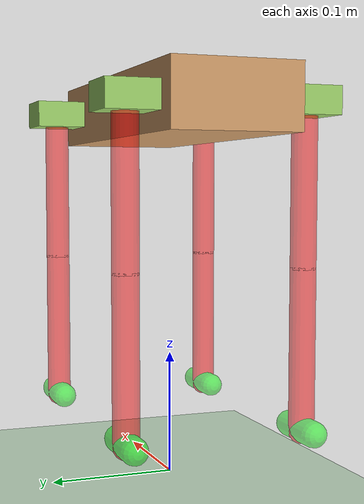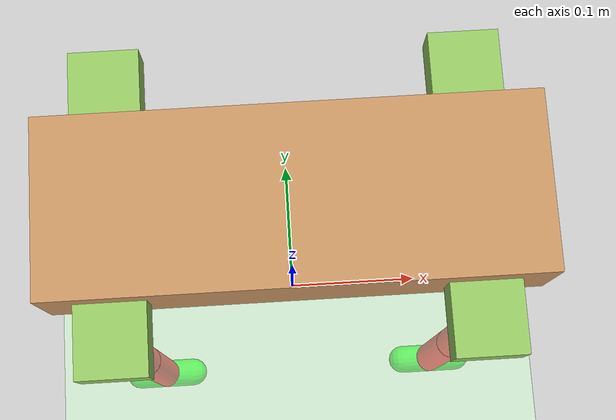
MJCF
<mujoco model="cheetah">
<compiler angle="radian" coordinate="local" inertiafromgeom="false"/>

<default>
    <joint armature="0.01936" solimplimit="0.9 0.95 0.01" solreflimit="0.01 1" stiffness="0"/>
    <geom conaffinity="0" condim="3" contype="1" friction="1.5 .1 .1" rgba="0.8 0.6 .4 1" solimp="0.9 0.95 0.01" solref="0.01 1"/>
    <position forcelimited="true"/>
</default>

<option>
    <flag sensornoise="disable"/>
</option>

<sensor>
    <accelerometer name="accel" noise="0.01" site="imu_site"/>
    <gyro name="gyro" noise="0.02" site="imu_site"/>
</sensor>

<size nstack="300000" nuser_geom="1"/>

<!-- Took out gravity="0 0 -9.81" term-->
<option timestep="0.01"/>
<asset>
    <texture builtin="gradient" height="100" rgb1="1 1 1" rgb2="0 0 0" type="skybox" width="100"/>
    <texture builtin="flat" height="1278" mark="cross" markrgb="1 1 1" name="texgeom" random="0.01" rgb1="0.8 0.6 0.4" rgb2="0.8 0.6 0.4" type="cube" width="127"/>
    <texture builtin="checker" height="100" name="texplane" rgb1="0 0 0" rgb2="0.8 0.8 0.8" type="2d" width="100"/>
    <material name="MatPlane" reflectance="0.5" shininess="1" specular="1" texrepeat="60 60" texture="texplane"/>
    <material name="geom" texture="texgeom" texuniform="true"/>
</asset>

<worldbody>
    <light cutoff="100" diffuse="1 1 1" dir="-0 0 -1.3" directional="true" exponent="1" pos="0 0 1.3" specular=".1 .1 .1"/>
    <geom conaffinity="1" condim="3" material="MatPlane" name="floor" pos="0 0 0" rgba="0.8 0.9 0.8 1" size="40 40 40" type="plane"/>
    <body name="torso" pos="0 0 0.3">
        <camera name="track" mode="trackcom" pos="0 -2 0.3" xyaxes="1 0 0 0 0 1"/>
        <joint armature="0" axis="1 0 0" damping="0" limited="false" name="rootx" pos="0 0 0" stiffness="0" type="free"/>
        <inertial pos="0 0 0" mass="0.56" diaginertia="0.0005532 0.0037619999999999997 0.004011000000000001"/>
        <geom pos="0 0 0" name="torso" size="0.138 0.05 0.025" type="box"/>
        <site name="imu_site" pos="0 0 0" size=".01 .01 .01" type="box"/>

        <body name="fr_module" pos="0.1 -0.04 0">
            <geom pos="0 -0.0132 0" name="fr_block" type="box" size="0.0197 0.0372 0.0107" rgba="0.6 0.8 .4 1"/>
            <joint axis="1 0 0" name="fr_x" pos="0 0 0" limited="true" range="-1.57 1.57" type="hinge" damping="1.049"/>
            <inertial pos="0 0 0" mass="0.08" diaginertia="3.698e-05 7.127e-06 4.075e-05"/>
            <body name="fr" pos="0 -0.03 0">
                <joint axis="0 1 0" name="fr_y" pos="0 0 0" limited="true" range="-1.57 1.57" type="hinge" damping="1.049"/>
                <inertial pos="0 0 0" mass="0.03" diaginertia="1.3020833333333332e-05 1.3020833333333332e-05 1e-06"/>
                <geom axisangle="0 1 0 0" name="fr" fromto="0 0 0 0 0 -0.125" size="0.01" type="capsule" rgba = "1 0 0 0.5" density="50"/>
                <body name="fr2" pos="0 0 -0.1235">
                    <joint axis="0 1 0" name="fr_y2" pos="0 0 0" limited="true" range="-3.14 0.0" type="hinge" damping="1.049"/>
                    <inertial pos="0 0 0" mass="0.03" diaginertia="1.3020833333333332e-05 1.3020833333333332e-05 1e-06"/>
                    <geom axisangle="0 1 0 0" name="fr_l2" fromto="0 0 0 0 0 -0.125" size="0.01" type="capsule" rgba="1 0 0 0.5" density="50"/>
                    <!-- New joint and body for the additional leg segment -->
                    <body name="fr3" pos="0 0 -0.1235">
                        <joint axis="0 1 0" name="fr_z" pos="0 0 0" limited="true" range="-1.57 1.57" type="hinge" damping="1.049"/>
                        <inertial pos="0 0 0" mass="0.02" diaginertia="1e-06 1e-06 1e-06"/>
                        <geom axisangle="1 0 0 1.5708" name="fr_capsule_geom" fromto="-0.02 0 0 0.02 0 0" size="0.01" type="capsule" rgba="0 1 0 0.5" density="50"/>
                    </body>
                </body>
            </body>
        </body>

        <body name="fl_module" pos="0.1 0.04 0">
            <geom pos = "0 0.0132 0" name="fl_block" type="box" size="0.0197 0.0372 0.0107" rgba="0.6 0.8 .4 1"/>
            <joint axis="1 0 0" name="fl_x" pos="0 0 0" limited="true" range="-1.57 1.57" type="hinge" damping="1.049"/>
            <inertial pos="0 0 0" mass="0.08" diaginertia="3.698e-05 7.127e-06 4.075e-05"/>
            <body name="fl" pos="0 0.03 0">
                <joint axis="0 1 0" name="fl_y" pos="0 0 0" limited="true" range="-1.57 1.57" type="hinge" damping="1.049"/>
                <inertial pos="0 0 0" mass="0.03" diaginertia="1.3020833333333332e-05 1.3020833333333332e-05 1e-06"/>
                <geom axisangle="0 1 0 0" name="fl" fromto="0 0 0 0 0 -0.125" size="0.01" type="capsule" rgba = "1 0 0 0.5" density="50"/>
                <body name="fl2" pos="0 0 -0.1235">
                    <joint axis="0 1 0" name="fl_y2" pos="0 0 0" limited="true" range="-3.14 0.0" type="hinge" damping="1.049"/>
                    <inertial pos="0 0 0" mass="0.03" diaginertia="1.3020833333333332e-05 1.3020833333333332e-05 1e-06"/>
                    <geom axisangle="0 1 0 0" name="fl_l2" fromto="0 0 0 0 0 -0.125" size="0.01" type="capsule" rgba="1 0 0 0.5" density="50"/>
                    <!-- New joint and body for the additional leg segment -->
                    <body name="fl3" pos="0 0 -0.1235">
                        <joint axis="0 1 0" name="fl_z" pos="0 0 0" limited="true" range="-1.57 1.57" type="hinge" damping="1.049"/>
                        <inertial pos="0 0 0" mass="0.02" diaginertia="1e-06 1e-06 1e-06"/>
                        <geom axisangle="1 0 0 1.5708" name="fl_capsule_geom" fromto="-0.02 0 0 0.02 0 0" size="0.01" type="capsule" rgba="0 1 0 0.5" density="50"/>
                    </body>
                </body>
            </body>
        </body>

        <body name="br_module" pos="-0.1 -0.04 0">
            <geom pos = "0 -0.0132 0" name="br_block" type="box" size="0.0197 0.0372 0.0107" rgba="0.6 0.8 .4 1"/>
            <joint axis="1 0 0" name="br_x" pos="0 0 0" limited="true" range="-1.57 1.57" type="hinge" damping="1.049"/>
            <inertial pos="0 0 0" mass="0.08" diaginertia="3.698e-05 7.127e-06 4.075e-05"/>
            <body name="br" pos="0 -0.03 0">
                <joint axis="0 1 0" name="br_y" pos="0 0 0" limited="true" range="-1.57 1.57" type="hinge" damping="1.049"/>
                <inertial pos="0 0 0" mass="0.03" diaginertia="1.3020833333333332e-05 1.3020833333333332e-05 1e-06"/>
                <geom axisangle="0 1 0 0" name="br" fromto="0 0 0 0 0 -0.125" size="0.01" type="capsule" rgba = "1 0 0 0.5" density="50"/>
                <body name="br2" pos="0 0 -0.1235">
                    <joint axis="0 1 0" name="br_y2" pos="0 0 0" limited="true" range="-3.14 0.0" type="hinge" damping="1.049"/>
                    <inertial pos="0 0 0" mass="0.03" diaginertia="1.3020833333333332e-05 1.3020833333333332e-05 1e-06"/>
                    <geom axisangle="0 1 0 0" name="br_l2" fromto="0 0 0 0 0 -0.125" size="0.01" type="capsule" rgba="1 0 0 0.5" density="50"/>
                    <!-- New joint and body for the additional leg segment -->
                    <body name="br3" pos="0 0 -0.1235">
                        <joint axis="0 1 0" name="br_z" pos="0 0 0" limited="true" range="-1.57 1.57" type="hinge" damping="1.049"/>
                        <inertial pos="0 0 0" mass="0.02" diaginertia="1e-06 1e-06 1e-06"/>
                        <geom axisangle="1 0 0 1.5708" name="br_capsule_geom" fromto="-0.02 0 0 0.02 0 0" size="0.01" type="capsule" rgba="0 1 0 0.5" density="50"/>
                    </body>
                </body>
            </body>
        </body>

        <body name="bl_module" pos="-0.1 0.04 0">
            <geom pos = "0 0.0132 0" name="bl_block" type="box" size="0.0197 0.0372 0.0107" rgba="0.6 0.8 .4 1"/>
            <joint axis="1 0 0" name="bl_x" pos="0 0 0" limited="true" range="-1.57 1.57" type="hinge" damping="1.049"/>
            <inertial pos="0 0 0" mass="0.08" diaginertia="3.698e-05 7.127e-06 4.075e-05"/>
            <body name="bl" pos="0 0.03 0">
                <joint axis="0 1 0" name="bl_y" pos="0 0 0" limited="true" range="-1.57 1.57" type="hinge" damping="1.049"/>
                <inertial pos="0 0 0" mass="0.03" diaginertia="1.3020833333333332e-05 1.3020833333333332e-05 1e-06"/>
                <geom axisangle="0 1 0 0" name="bl" fromto="0 0 0 0 0 -0.125" size="0.01" type="capsule" rgba = "1 0 0 0.5" density="50"/>
                <body name="bl2" pos="0 0 -0.1235">
                    <joint axis="0 1 0" name="bl_y2" pos="0 0 0" limited="true" range="-3.14 0.0" type="hinge" damping="1.049"/>
                    <inertial pos="0 0 0" mass="0.03" diaginertia="1.3020833333333332e-05 1.3020833333333332e-05 1e-06"/>
                    <geom axisangle="0 1 0 0" name="bl_l2" fromto="0 0 0 0 0 -0.125" size="0.01" type="capsule" rgba="1 0 0 0.5" density="50"/>
                    <!-- New joint and body for the additional leg segment -->
                    <body name="bl3" pos="0 0 -0.1235">
                        <joint axis="0 1 0" name="bl_z" pos="0 0 0" limited="true" range="-1.57 1.57" type="hinge" damping="1.049"/>
                        <inertial pos="0 0 0" mass="0.02" diaginertia="1e-06 1e-06 1e-06"/>
                        <geom axisangle="1 0 0 1.5708" name="bl_capsule_geom" fromto="-0.02 0 0 0.02 0 0" size="0.01" type="capsule" rgba="0 1 0 0.5" density="50"/>
                    </body>
                </body>
            </body>
        </body>
    </body>
</worldbody>

<actuator>
    <position gear="1" joint="fr_x" name="fr_x" kp="300" forcerange="-3.0 3.0"/>
    <position gear="1" joint="fr_y" name="fr_y" kp="300" forcerange="-3.0 3.0"/>
    <position gear="1" joint="fr_y2" name="fr_y2" kp="300" forcerange="-3.0 3.0"/>
    <position gear="1" joint="fr_z" name="fr_z" kp="300" forcerange="-3.0 3.0"/>

    <position gear="1" joint="fl_x" name="fl_x" kp="300" forcerange="-3.0 3.0"/>
    <position gear="1" joint="fl_y" name="fl_y" kp="300" forcerange="-3.0 3.0"/>
    <position gear="1" joint="fl_y2" name="fl_y2" kp="300" forcerange="-3.0 3.0"/>
    <position gear="1" joint="fl_z" name="fl_z" kp="300" forcerange="-3.0 3.0"/>

    <position gear="1" joint="br_x" name="br_x" kp="300" forcerange="-3.0 3.0"/>
    <position gear="1" joint="br_y" name="br_y" kp="300" forcerange="-3.0 3.0"/>
    <position gear="1" joint="br_y2" name="br_y2" kp="300" forcerange="-3.0 3.0"/>
    <position gear="1" joint="br_z" name="br_z" kp="300" forcerange="-3.0 3.0"/>

    <position gear="1" joint="bl_x" name="bl_x" kp="300" forcerange="-3.0 3.0"/>
    <position gear="1" joint="bl_y" name="bl_y" kp="300" forcerange="-3.0 3.0"/>
    <position gear="1" joint="bl_y2" name="bl_y2" kp="300" forcerange="-3.0 3.0"/>
    <position gear="1" joint="bl_z" name="bl_z" kp="300" forcerange="-3.0 3.0"/>
    </actuator>
</mujoco>
